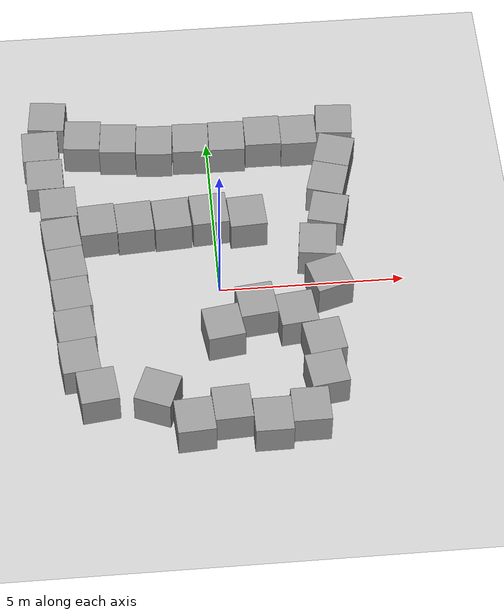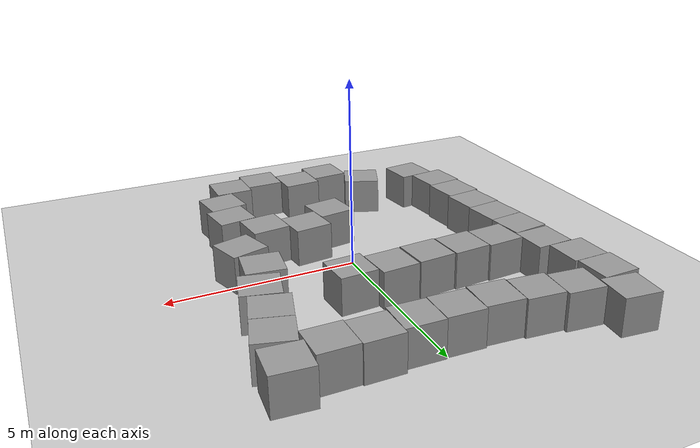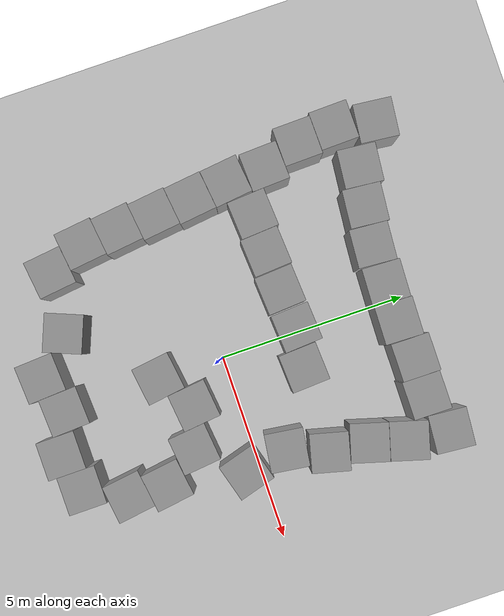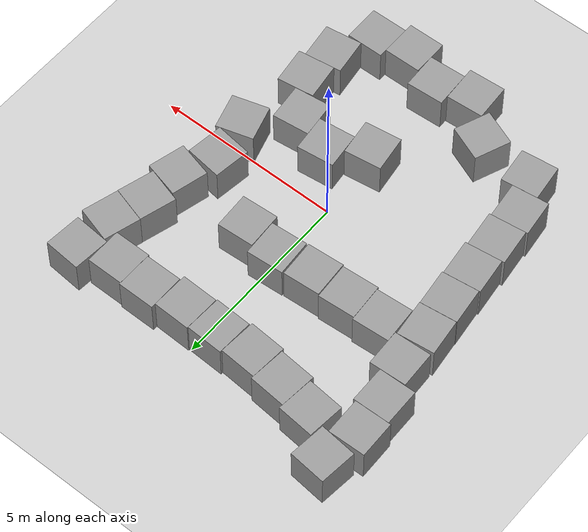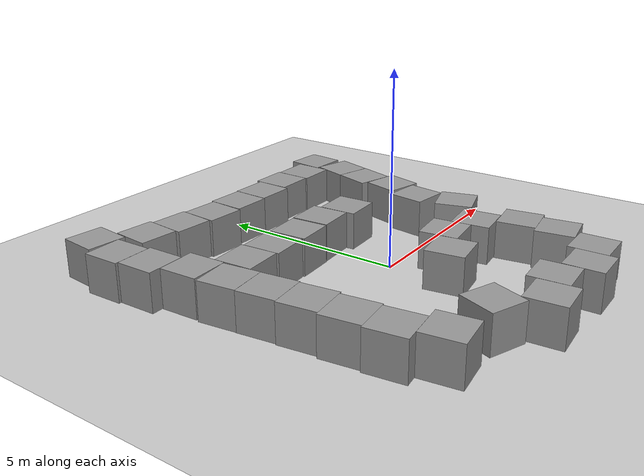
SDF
<sdf version="1.7">
 <world name="default">
  <light name="sun" type="directional">
   <pose>0 0 10 0 -0 0</pose>
   <diffuse>0.8 0.8 0.8 1</diffuse>
   <specular>0.2 0.2 0.2 1</specular>
   <attenuation>
    <range>1000</range>
    <constant>0.9</constant>
    <linear>0.01</linear>
    <quadratic>0.001</quadratic>
   </attenuation>
   <direction>-0.5 0.1 -0.9</direction>
   <spot><inner_angle>0</inner_angle><outer_angle>0</outer_angle><falloff>0</falloff></spot>
  </light>
  <model name="ground_plane">
   <static>1</static>
   <link name="link">
    <collision name="collision">
     <geometry><plane><normal>0 0 1</normal><size>100 100</size></plane></geometry>
     <surface>
      <contact><collide_bitmask>65535</collide_bitmask></contact>
      <friction><ode><mu>100</mu><mu2>50</mu2></ode></friction>
     </surface>
    </collision>
    <visual name="visual">
     <cast_shadows>0</cast_shadows>
     <geometry><plane><normal>0 0 1</normal><size>100 100</size></plane></geometry>
     <material>
      <script><uri>file://media/materials/scripts/gazebo.material</uri><name>Gazebo/Grey</name></script>
     </material>
    </visual>
   </link>
  </model>
  <gravity>0 0 -9.8</gravity>
  <magnetic_field>6e-06 2.3e-05 -4.2e-05</magnetic_field>
  <atmosphere type="adiabatic"/>
  <physics type="ode">
   <max_step_size>0.001</max_step_size>
   <real_time_factor>1</real_time_factor>
   <real_time_update_rate>1000</real_time_update_rate>
  </physics>
  <scene><ambient>0.4 0.4 0.4 1</ambient><background>0.7 0.7 0.7 1</background><shadows>1</shadows></scene>
  <audio><device>default</device></audio>
  <spherical_coordinates>
   <surface_model>EARTH_WGS84</surface_model>
   <latitude_deg>0</latitude_deg>
   <longitude_deg>0</longitude_deg>
   <elevation>0</elevation>
   <heading_deg>0</heading_deg>
  </spherical_coordinates>
  <model name="unit_box">
   <pose>-0.035627 -1.67872 0.499995 -0 -1e-05 0.138836</pose>
   <link name="link">
    <inertial>
     <mass>1</mass>
     <inertia>
      <ixx>0.166667</ixx>
      <ixy>0</ixy>
      <ixz>0</ixz>
      <iyy>0.166667</iyy>
      <iyz>0</iyz>
      <izz>0.166667</izz>
     </inertia>
    </inertial>
    <collision name="collision"><geometry><box><size>1 1 1</size></box></geometry></collision>
    <visual name="visual">
     <geometry><box><size>1 1 1</size></box></geometry>
     <material>
      <script><name>Gazebo/Grey</name><uri>file://media/materials/scripts/gazebo.material</uri></script>
     </material>
    </visual>
   </link>
  </model>
  <model name="unit_box_0">
   <pose>0.898488 -1.04184 0.5 0 -0 0.111976</pose>
   <link name="link">
    <inertial>
     <mass>1</mass>
     <inertia>
      <ixx>0.166667</ixx>
      <ixy>0</ixy>
      <ixz>0</ixz>
      <iyy>0.166667</iyy>
      <iyz>0</iyz>
      <izz>0.166667</izz>
     </inertia>
    </inertial>
    <collision name="collision"><geometry><box><size>1 1 1</size></box></geometry></collision>
    <visual name="visual">
     <geometry><box><size>1 1 1</size></box></geometry>
     <material>
      <script><name>Gazebo/Grey</name><uri>file://media/materials/scripts/gazebo.material</uri></script>
     </material>
    </visual>
   </link>
  </model>
  <model name="unit_box_2">
   <pose>-2.19354 1.93386 0.5 0 -0 0.065932</pose>
   <link name="link">
    <inertial>
     <mass>1</mass>
     <inertia>
      <ixx>0.166667</ixx>
      <ixy>0</ixy>
      <ixz>0</ixz>
      <iyy>0.166667</iyy>
      <iyz>0</iyz>
      <izz>0.166667</izz>
     </inertia>
    </inertial>
    <collision name="collision"><geometry><box><size>1 1 1</size></box></geometry></collision>
    <visual name="visual">
     <geometry><box><size>1 1 1</size></box></geometry>
     <material>
      <script><name>Gazebo/Grey</name><uri>file://media/materials/scripts/gazebo.material</uri></script>
     </material>
    </visual>
   </link>
  </model>
  <light name="user_point_light_0" type="point">
   <pose>-0.100506 -0.034414 1 0 -0 0</pose>
   <diffuse>0.5 0.5 0.5 1</diffuse>
   <specular>0.1 0.1 0.1 1</specular>
   <attenuation>
    <range>20</range>
    <constant>0.5</constant>
    <linear>0.01</linear>
    <quadratic>0.001</quadratic>
   </attenuation>
   <cast_shadows>0</cast_shadows>
   <direction>0 0 -1</direction>
   <spot><inner_angle>0</inner_angle><outer_angle>0</outer_angle><falloff>0</falloff></spot>
  </light>
  <model name="unit_box_4">
   <pose>-1.89105 -3.5814 0.499995 1e-05 0 -0.380639</pose>
   <link name="link">
    <inertial>
     <mass>1</mass>
     <inertia>
      <ixx>0.166667</ixx>
      <ixy>0</ixy>
      <ixz>0</ixz>
      <iyy>0.166667</iyy>
      <iyz>0</iyz>
      <izz>0.166667</izz>
     </inertia>
    </inertial>
    <collision name="collision"><geometry><box><size>1 1 1</size></box></geometry></collision>
    <visual name="visual">
     <geometry><box><size>1 1 1</size></box></geometry>
     <material>
      <script><name>Gazebo/Grey</name><uri>file://media/materials/scripts/gazebo.material</uri></script>
     </material>
    </visual>
   </link>
  </model>
  <model name="unit_box_5">
   <pose>-0.998855 -4.49218 0.5 0 -0 0.060899</pose>
   <link name="link">
    <inertial>
     <mass>1</mass>
     <inertia>
      <ixx>0.166667</ixx>
      <ixy>0</ixy>
      <ixz>0</ixz>
      <iyy>0.166667</iyy>
      <iyz>0</iyz>
      <izz>0.166667</izz>
     </inertia>
    </inertial>
    <collision name="collision"><geometry><box><size>1 1 1</size></box></geometry></collision>
    <visual name="visual">
     <geometry><box><size>1 1 1</size></box></geometry>
     <material>
      <script><name>Gazebo/Grey</name><uri>file://media/materials/scripts/gazebo.material</uri></script>
     </material>
    </visual>
   </link>
  </model>
  <model name="unit_box_6">
   <pose>-0.01034 -4.19096 0.499995 0 -1e-05 0.05102</pose>
   <link name="link">
    <inertial>
     <mass>1</mass>
     <inertia>
      <ixx>0.166667</ixx>
      <ixy>0</ixy>
      <ixz>0</ixz>
      <iyy>0.166667</iyy>
      <iyz>0</iyz>
      <izz>0.166667</izz>
     </inertia>
    </inertial>
    <collision name="collision"><geometry><box><size>1 1 1</size></box></geometry></collision>
    <visual name="visual">
     <geometry><box><size>1 1 1</size></box></geometry>
     <material>
      <script><name>Gazebo/Grey</name><uri>file://media/materials/scripts/gazebo.material</uri></script>
     </material>
    </visual>
   </link>
  </model>
  <model name="unit_box_7">
   <pose>1.01431 -4.62885 0.499995 1e-05 0 0.007071</pose>
   <link name="link">
    <inertial>
     <mass>1</mass>
     <inertia>
      <ixx>0.166667</ixx>
      <ixy>0</ixy>
      <ixz>0</ixz>
      <iyy>0.166667</iyy>
      <iyz>0</iyz>
      <izz>0.166667</izz>
     </inertia>
    </inertial>
    <collision name="collision"><geometry><box><size>1 1 1</size></box></geometry></collision>
    <visual name="visual">
     <geometry><box><size>1 1 1</size></box></geometry>
     <material>
      <script><name>Gazebo/Grey</name><uri>file://media/materials/scripts/gazebo.material</uri></script>
     </material>
    </visual>
   </link>
  </model>
  <model name="unit_box_8">
   <pose>2.01285 -4.40975 0.499995 1e-05 -0 0.006996</pose>
   <link name="link">
    <inertial>
     <mass>1</mass>
     <inertia>
      <ixx>0.166667</ixx>
      <ixy>0</ixy>
      <ixz>0</ixz>
      <iyy>0.166667</iyy>
      <iyz>0</iyz>
      <izz>0.166667</izz>
     </inertia>
    </inertial>
    <collision name="collision"><geometry><box><size>1 1 1</size></box></geometry></collision>
    <visual name="visual">
     <geometry><box><size>1 1 1</size></box></geometry>
     <material>
      <script><name>Gazebo/Grey</name><uri>file://media/materials/scripts/gazebo.material</uri></script>
     </material>
    </visual>
   </link>
  </model>
  <model name="unit_box_9">
   <pose>2.54337 -3.34328 0.5 0 -0 0.138745</pose>
   <link name="link">
    <inertial>
     <mass>1</mass>
     <inertia>
      <ixx>0.166667</ixx>
      <ixy>0</ixy>
      <ixz>0</ixz>
      <iyy>0.166667</iyy>
      <iyz>0</iyz>
      <izz>0.166667</izz>
     </inertia>
    </inertial>
    <collision name="collision"><geometry><box><size>1 1 1</size></box></geometry></collision>
    <visual name="visual">
     <geometry><box><size>1 1 1</size></box></geometry>
     <material>
      <script><name>Gazebo/Grey</name><uri>file://media/materials/scripts/gazebo.material</uri></script>
     </material>
    </visual>
   </link>
  </model>
  <model name="unit_box_10">
   <pose>2.58263 -2.32772 0.5 0 -0 0.139362</pose>
   <link name="link">
    <inertial>
     <mass>1</mass>
     <inertia>
      <ixx>0.166667</ixx>
      <ixy>0</ixy>
      <ixz>0</ixz>
      <iyy>0.166667</iyy>
      <iyz>0</iyz>
      <izz>0.166667</izz>
     </inertia>
    </inertial>
    <collision name="collision"><geometry><box><size>1 1 1</size></box></geometry></collision>
    <visual name="visual">
     <geometry><box><size>1 1 1</size></box></geometry>
     <material>
      <script><name>Gazebo/Grey</name><uri>file://media/materials/scripts/gazebo.material</uri></script>
     </material>
    </visual>
   </link>
  </model>
  <model name="unit_box_11">
   <pose>1.94389 -1.38844 0.5 0 -0 0.108842</pose>
   <link name="link">
    <inertial>
     <mass>1</mass>
     <inertia>
      <ixx>0.166667</ixx>
      <ixy>0</ixy>
      <ixz>0</ixz>
      <iyy>0.166667</iyy>
      <iyz>0</iyz>
      <izz>0.166667</izz>
     </inertia>
    </inertial>
    <collision name="collision"><geometry><box><size>1 1 1</size></box></geometry></collision>
    <visual name="visual">
     <geometry><box><size>1 1 1</size></box></geometry>
     <material>
      <script><name>Gazebo/Grey</name><uri>file://media/materials/scripts/gazebo.material</uri></script>
     </material>
    </visual>
   </link>
  </model>
  <model name="unit_box_12">
   <pose>-3.45034 -3.39839 0.5 0 -0 0.120174</pose>
   <link name="link">
    <inertial>
     <mass>1</mass>
     <inertia>
      <ixx>0.166667</ixx>
      <ixy>0</ixy>
      <ixz>0</ixz>
      <iyy>0.166667</iyy>
      <iyz>0</iyz>
      <izz>0.166667</izz>
     </inertia>
    </inertial>
    <collision name="collision"><geometry><box><size>1 1 1</size></box></geometry></collision>
    <visual name="visual">
     <geometry><box><size>1 1 1</size></box></geometry>
     <material>
      <script><name>Gazebo/Grey</name><uri>file://media/materials/scripts/gazebo.material</uri></script>
     </material>
    </visual>
   </link>
  </model>
  <model name="unit_box_14">
   <pose>-3.95054 -1.44313 0.5 0 -0 0.119674</pose>
   <link name="link">
    <inertial>
     <mass>1</mass>
     <inertia>
      <ixx>0.166667</ixx>
      <ixy>0</ixy>
      <ixz>0</ixz>
      <iyy>0.166667</iyy>
      <iyz>0</iyz>
      <izz>0.166667</izz>
     </inertia>
    </inertial>
    <collision name="collision"><geometry><box><size>1 1 1</size></box></geometry></collision>
    <visual name="visual">
     <geometry><box><size>1 1 1</size></box></geometry>
     <material>
      <script><name>Gazebo/Grey</name><uri>file://media/materials/scripts/gazebo.material</uri></script>
     </material>
    </visual>
   </link>
  </model>
  <model name="unit_box_15">
   <pose>-4.00321 -0.442221 0.499995 -0 1e-05 0.11961</pose>
   <link name="link">
    <inertial>
     <mass>1</mass>
     <inertia>
      <ixx>0.166667</ixx>
      <ixy>0</ixy>
      <ixz>0</ixz>
      <iyy>0.166667</iyy>
      <iyz>0</iyz>
      <izz>0.166667</izz>
     </inertia>
    </inertial>
    <collision name="collision"><geometry><box><size>1 1 1</size></box></geometry></collision>
    <visual name="visual">
     <geometry><box><size>1 1 1</size></box></geometry>
     <material>
      <script><name>Gazebo/Grey</name><uri>file://media/materials/scripts/gazebo.material</uri></script>
     </material>
    </visual>
   </link>
  </model>
  <model name="unit_box_16">
   <pose>-4.09014 0.55515 0.499995 0 -1e-05 0.118776</pose>
   <link name="link">
    <inertial>
     <mass>1</mass>
     <inertia>
      <ixx>0.166667</ixx>
      <ixy>0</ixy>
      <ixz>0</ixz>
      <iyy>0.166667</iyy>
      <iyz>0</iyz>
      <izz>0.166667</izz>
     </inertia>
    </inertial>
    <collision name="collision"><geometry><box><size>1 1 1</size></box></geometry></collision>
    <visual name="visual">
     <geometry><box><size>1 1 1</size></box></geometry>
     <material>
      <script><name>Gazebo/Grey</name><uri>file://media/materials/scripts/gazebo.material</uri></script>
     </material>
    </visual>
   </link>
  </model>
  <model name="unit_box_13">
   <pose>-3.88289 -2.44225 0.5 0 -0 0.119731</pose>
   <link name="link">
    <inertial>
     <mass>1</mass>
     <inertia>
      <ixx>0.166667</ixx>
      <ixy>0</ixy>
      <ixz>0</ixz>
      <iyy>0.166667</iyy>
      <iyz>0</iyz>
      <izz>0.166667</izz>
     </inertia>
    </inertial>
    <collision name="collision"><geometry><box><size>1 1 1</size></box></geometry></collision>
    <visual name="visual">
     <geometry><box><size>1 1 1</size></box></geometry>
     <material>
      <script><name>Gazebo/Grey</name><uri>file://media/materials/scripts/gazebo.material</uri></script>
     </material>
    </visual>
   </link>
  </model>
  <model name="unit_box_17">
   <pose>-4.19787 1.55148 0.5 0 -0 0.115383</pose>
   <link name="link">
    <inertial>
     <mass>1</mass>
     <inertia>
      <ixx>0.166667</ixx>
      <ixy>0</ixy>
      <ixz>0</ixz>
      <iyy>0.166667</iyy>
      <iyz>0</iyz>
      <izz>0.166667</izz>
     </inertia>
    </inertial>
    <collision name="collision"><geometry><box><size>1 1 1</size></box></geometry></collision>
    <visual name="visual">
     <geometry><box><size>1 1 1</size></box></geometry>
     <material>
      <script><name>Gazebo/Grey</name><uri>file://media/materials/scripts/gazebo.material</uri></script>
     </material>
    </visual>
   </link>
  </model>
  <model name="unit_box_18">
   <pose>-4.24034 2.58548 0.499995 0 -1e-05 0.043618</pose>
   <link name="link">
    <inertial>
     <mass>1</mass>
     <inertia>
      <ixx>0.166667</ixx>
      <ixy>0</ixy>
      <ixz>0</ixz>
      <iyy>0.166667</iyy>
      <iyz>0</iyz>
      <izz>0.166667</izz>
     </inertia>
    </inertial>
    <collision name="collision"><geometry><box><size>1 1 1</size></box></geometry></collision>
    <visual name="visual">
     <geometry><box><size>1 1 1</size></box></geometry>
     <material>
      <script><name>Gazebo/Grey</name><uri>file://media/materials/scripts/gazebo.material</uri></script>
     </material>
    </visual>
   </link>
  </model>
  <model name="unit_box_19">
   <pose>-3.19948 1.92539 0.5 0 -0 0.066023</pose>
   <link name="link">
    <inertial>
     <mass>1</mass>
     <inertia>
      <ixx>0.166667</ixx>
      <ixy>0</ixy>
      <ixz>0</ixz>
      <iyy>0.166667</iyy>
      <iyz>0</iyz>
      <izz>0.166667</izz>
     </inertia>
    </inertial>
    <collision name="collision"><geometry><box><size>1 1 1</size></box></geometry></collision>
    <visual name="visual">
     <geometry><box><size>1 1 1</size></box></geometry>
     <material>
      <script><name>Gazebo/Grey</name><uri>file://media/materials/scripts/gazebo.material</uri></script>
     </material>
    </visual>
   </link>
  </model>
  <model name="unit_box_20">
   <pose>-1.17132 1.96383 0.5 0 -0 0.065593</pose>
   <link name="link">
    <inertial>
     <mass>1</mass>
     <inertia>
      <ixx>0.166667</ixx>
      <ixy>0</ixy>
      <ixz>0</ixz>
      <iyy>0.166667</iyy>
      <iyz>0</iyz>
      <izz>0.166667</izz>
     </inertia>
    </inertial>
    <collision name="collision"><geometry><box><size>1 1 1</size></box></geometry></collision>
    <visual name="visual">
     <geometry><box><size>1 1 1</size></box></geometry>
     <material>
      <script><name>Gazebo/Grey</name><uri>file://media/materials/scripts/gazebo.material</uri></script>
     </material>
    </visual>
   </link>
  </model>
  <model name="unit_box_21">
   <pose>-0.134526 2.04707 0.5 0 -0 0.065597</pose>
   <link name="link">
    <inertial>
     <mass>1</mass>
     <inertia>
      <ixx>0.166667</ixx>
      <ixy>0</ixy>
      <ixz>0</ixz>
      <iyy>0.166667</iyy>
      <iyz>0</iyz>
      <izz>0.166667</izz>
     </inertia>
    </inertial>
    <collision name="collision"><geometry><box><size>1 1 1</size></box></geometry></collision>
    <visual name="visual">
     <geometry><box><size>1 1 1</size></box></geometry>
     <material>
      <script><name>Gazebo/Grey</name><uri>file://media/materials/scripts/gazebo.material</uri></script>
     </material>
    </visual>
   </link>
  </model>
  <model name="unit_box_22">
   <pose>0.888357 1.90071 0.499995 -1e-05 0 0.054946</pose>
   <link name="link">
    <inertial>
     <mass>1</mass>
     <inertia>
      <ixx>0.166667</ixx>
      <ixy>0</ixy>
      <ixz>0</ixz>
      <iyy>0.166667</iyy>
      <iyz>0</iyz>
      <izz>0.166667</izz>
     </inertia>
    </inertial>
    <collision name="collision"><geometry><box><size>1 1 1</size></box></geometry></collision>
    <visual name="visual">
     <geometry><box><size>1 1 1</size></box></geometry>
     <material>
      <script><name>Gazebo/Grey</name><uri>file://media/materials/scripts/gazebo.material</uri></script>
     </material>
    </visual>
   </link>
  </model>
  <model name="unit_box_24">
   <pose>2.9275 -0.331741 0.499996 -1.58153 1.57079 -2.87122</pose>
   <link name="link">
    <inertial>
     <mass>1</mass>
     <inertia>
      <ixx>0.166667</ixx>
      <ixy>0</ixy>
      <ixz>0</ixz>
      <iyy>0.166667</iyy>
      <iyz>0</iyz>
      <izz>0.166667</izz>
     </inertia>
    </inertial>
    <collision name="collision"><geometry><box><size>1 1 1</size></box></geometry></collision>
    <visual name="visual">
     <geometry><box><size>1 1 1</size></box></geometry>
     <material>
      <script><name>Gazebo/Grey</name><uri>file://media/materials/scripts/gazebo.material</uri></script>
     </material>
    </visual>
   </link>
  </model>
  <model name="unit_box_22_clone">
   <pose>0.538763 4.54633 0.499995 0 1e-05 -0.026466</pose>
   <link name="link">
    <inertial>
     <mass>1</mass>
     <inertia>
      <ixx>0.166667</ixx>
      <ixy>0</ixy>
      <ixz>0</ixz>
      <iyy>0.166667</iyy>
      <iyz>0</iyz>
      <izz>0.166667</izz>
     </inertia>
    </inertial>
    <collision name="collision"><geometry><box><size>1 1 1</size></box></geometry></collision>
    <visual name="visual">
     <geometry><box><size>1 1 1</size></box></geometry>
     <material>
      <script><name>Gazebo/Grey</name><uri>file://media/materials/scripts/gazebo.material</uri></script>
     </material>
    </visual>
   </link>
  </model>
  <model name="unit_box_22_clone_0">
   <pose>-0.469286 4.54956 0.499995 0 1e-05 -0.03933</pose>
   <link name="link">
    <inertial>
     <mass>1</mass>
     <inertia>
      <ixx>0.166667</ixx>
      <ixy>0</ixy>
      <ixz>0</ixz>
      <iyy>0.166667</iyy>
      <iyz>0</iyz>
      <izz>0.166667</izz>
     </inertia>
    </inertial>
    <collision name="collision"><geometry><box><size>1 1 1</size></box></geometry></collision>
    <visual name="visual">
     <geometry><box><size>1 1 1</size></box></geometry>
     <material>
      <script><name>Gazebo/Grey</name><uri>file://media/materials/scripts/gazebo.material</uri></script>
     </material>
    </visual>
   </link>
  </model>
  <model name="unit_box_22_clone_1">
   <pose>-1.48681 4.54544 0.5 -0 -0 -0.070127</pose>
   <link name="link">
    <inertial>
     <mass>1</mass>
     <inertia>
      <ixx>0.166667</ixx>
      <ixy>0</ixy>
      <ixz>0</ixz>
      <iyy>0.166667</iyy>
      <iyz>0</iyz>
      <izz>0.166667</izz>
     </inertia>
    </inertial>
    <collision name="collision"><geometry><box><size>1 1 1</size></box></geometry></collision>
    <visual name="visual">
     <geometry><box><size>1 1 1</size></box></geometry>
     <material>
      <script><name>Gazebo/Grey</name><uri>file://media/materials/scripts/gazebo.material</uri></script>
     </material>
    </visual>
   </link>
  </model>
  <model name="unit_box_22_clone_2">
   <pose>-2.48674 4.68927 0.499995 0 1e-05 -0.087593</pose>
   <link name="link">
    <inertial>
     <mass>1</mass>
     <inertia>
      <ixx>0.166667</ixx>
      <ixy>0</ixy>
      <ixz>0</ixz>
      <iyy>0.166667</iyy>
      <iyz>0</iyz>
      <izz>0.166667</izz>
     </inertia>
    </inertial>
    <collision name="collision"><geometry><box><size>1 1 1</size></box></geometry></collision>
    <visual name="visual">
     <geometry><box><size>1 1 1</size></box></geometry>
     <material>
      <script><name>Gazebo/Grey</name><uri>file://media/materials/scripts/gazebo.material</uri></script>
     </material>
    </visual>
   </link>
  </model>
  <model name="unit_box_22_clone_3">
   <pose>-3.47667 4.88533 0.499995 -1e-05 -0 -0.095389</pose>
   <link name="link">
    <inertial>
     <mass>1</mass>
     <inertia>
      <ixx>0.166667</ixx>
      <ixy>0</ixy>
      <ixz>0</ixz>
      <iyy>0.166667</iyy>
      <iyz>0</iyz>
      <izz>0.166667</izz>
     </inertia>
    </inertial>
    <collision name="collision"><geometry><box><size>1 1 1</size></box></geometry></collision>
    <visual name="visual">
     <geometry><box><size>1 1 1</size></box></geometry>
     <material>
      <script><name>Gazebo/Grey</name><uri>file://media/materials/scripts/gazebo.material</uri></script>
     </material>
    </visual>
   </link>
  </model>
  <model name="unit_box_22_clone_4">
   <pose>-4.43264 5.62821 0.5 -0 -0 -0.104545</pose>
   <link name="link">
    <inertial>
     <mass>1</mass>
     <inertia>
      <ixx>0.166667</ixx>
      <ixy>0</ixy>
      <ixz>0</ixz>
      <iyy>0.166667</iyy>
      <iyz>0</iyz>
      <izz>0.166667</izz>
     </inertia>
    </inertial>
    <collision name="collision"><geometry><box><size>1 1 1</size></box></geometry></collision>
    <visual name="visual">
     <geometry><box><size>1 1 1</size></box></geometry>
     <material>
      <script><name>Gazebo/Grey</name><uri>file://media/materials/scripts/gazebo.material</uri></script>
     </material>
    </visual>
   </link>
  </model>
  <model name="unit_box_22_clone_5">
   <pose>-4.57038 3.58411 0.499995 0 1e-05 0.021589</pose>
   <link name="link">
    <inertial>
     <mass>1</mass>
     <inertia>
      <ixx>0.166667</ixx>
      <ixy>0</ixy>
      <ixz>0</ixz>
      <iyy>0.166667</iyy>
      <iyz>0</iyz>
      <izz>0.166667</izz>
     </inertia>
    </inertial>
    <collision name="collision"><geometry><box><size>1 1 1</size></box></geometry></collision>
    <visual name="visual">
     <geometry><box><size>1 1 1</size></box></geometry>
     <material>
      <script><name>Gazebo/Grey</name><uri>file://media/materials/scripts/gazebo.material</uri></script>
     </material>
    </visual>
   </link>
  </model>
  <model name="unit_box_22_clone_6">
   <pose>-4.65996 4.58477 0.499995 0 1e-05 0.023232</pose>
   <link name="link">
    <inertial>
     <mass>1</mass>
     <inertia>
      <ixx>0.166667</ixx>
      <ixy>0</ixy>
      <ixz>0</ixz>
      <iyy>0.166667</iyy>
      <iyz>0</iyz>
      <izz>0.166667</izz>
     </inertia>
    </inertial>
    <collision name="collision"><geometry><box><size>1 1 1</size></box></geometry></collision>
    <visual name="visual">
     <geometry><box><size>1 1 1</size></box></geometry>
     <material>
      <script><name>Gazebo/Grey</name><uri>file://media/materials/scripts/gazebo.material</uri></script>
     </material>
    </visual>
   </link>
  </model>
  <model name="unit_box_22_clone_7">
   <pose>2.72458 0.815674 0.499995 -1e-05 0 -0.131393</pose>
   <link name="link">
    <inertial>
     <mass>1</mass>
     <inertia>
      <ixx>0.166667</ixx>
      <ixy>0</ixy>
      <ixz>0</ixz>
      <iyy>0.166667</iyy>
      <iyz>0</iyz>
      <izz>0.166667</izz>
     </inertia>
    </inertial>
    <collision name="collision"><geometry><box><size>1 1 1</size></box></geometry></collision>
    <visual name="visual">
     <geometry><box><size>1 1 1</size></box></geometry>
     <material>
      <script><name>Gazebo/Grey</name><uri>file://media/materials/scripts/gazebo.material</uri></script>
     </material>
    </visual>
   </link>
  </model>
  <model name="unit_box_22_clone_9">
   <pose>3.12336 1.82987 0.499995 0 1e-05 -0.250637</pose>
   <link name="link">
    <inertial>
     <mass>1</mass>
     <inertia>
      <ixx>0.166667</ixx>
      <ixy>0</ixy>
      <ixz>0</ixz>
      <iyy>0.166667</iyy>
      <iyz>0</iyz>
      <izz>0.166667</izz>
     </inertia>
    </inertial>
    <collision name="collision"><geometry><box><size>1 1 1</size></box></geometry></collision>
    <visual name="visual">
     <geometry><box><size>1 1 1</size></box></geometry>
     <material>
      <script><name>Gazebo/Grey</name><uri>file://media/materials/scripts/gazebo.material</uri></script>
     </material>
    </visual>
   </link>
  </model>
  <model name="unit_box_22_clone_10">
   <pose>3.21566 2.85866 0.5 0 -0 -0.282124</pose>
   <link name="link">
    <inertial>
     <mass>1</mass>
     <inertia>
      <ixx>0.166667</ixx>
      <ixy>0</ixy>
      <ixz>0</ixz>
      <iyy>0.166667</iyy>
      <iyz>0</iyz>
      <izz>0.166667</izz>
     </inertia>
    </inertial>
    <collision name="collision"><geometry><box><size>1 1 1</size></box></geometry></collision>
    <visual name="visual">
     <geometry><box><size>1 1 1</size></box></geometry>
     <material>
      <script><name>Gazebo/Grey</name><uri>file://media/materials/scripts/gazebo.material</uri></script>
     </material>
    </visual>
   </link>
  </model>
  <model name="unit_box_22_clone_11">
   <pose>3.48907 3.82346 0.5 0 -0 -0.281567</pose>
   <link name="link">
    <inertial>
     <mass>1</mass>
     <inertia>
      <ixx>0.166667</ixx>
      <ixy>0</ixy>
      <ixz>0</ixz>
      <iyy>0.166667</iyy>
      <iyz>0</iyz>
      <izz>0.166667</izz>
     </inertia>
    </inertial>
    <collision name="collision"><geometry><box><size>1 1 1</size></box></geometry></collision>
    <visual name="visual">
     <geometry><box><size>1 1 1</size></box></geometry>
     <material>
      <script><name>Gazebo/Grey</name><uri>file://media/materials/scripts/gazebo.material</uri></script>
     </material>
    </visual>
   </link>
  </model>
  <model name="unit_box_22_clone_12">
   <pose>3.59102 4.9092 0.499995 -1e-05 -0 -0.080489</pose>
   <link name="link">
    <inertial>
     <mass>1</mass>
     <inertia>
      <ixx>0.166667</ixx>
      <ixy>0</ixy>
      <ixz>0</ixz>
      <iyy>0.166667</iyy>
      <iyz>0</iyz>
      <izz>0.166667</izz>
     </inertia>
    </inertial>
    <collision name="collision"><geometry><box><size>1 1 1</size></box></geometry></collision>
    <visual name="visual">
     <geometry><box><size>1 1 1</size></box></geometry>
     <material>
      <script><name>Gazebo/Grey</name><uri>file://media/materials/scripts/gazebo.material</uri></script>
     </material>
    </visual>
   </link>
  </model>
  <model name="unit_box_22_clone_13">
   <pose>2.5519 4.60769 0.499995 0 -1e-05 -0.00316</pose>
   <link name="link">
    <inertial>
     <mass>1</mass>
     <inertia>
      <ixx>0.166667</ixx>
      <ixy>0</ixy>
      <ixz>0</ixz>
      <iyy>0.166667</iyy>
      <iyz>0</iyz>
      <izz>0.166667</izz>
     </inertia>
    </inertial>
    <collision name="collision"><geometry><box><size>1 1 1</size></box></geometry></collision>
    <visual name="visual">
     <geometry><box><size>1 1 1</size></box></geometry>
     <material>
      <script><name>Gazebo/Grey</name><uri>file://media/materials/scripts/gazebo.material</uri></script>
     </material>
    </visual>
   </link>
  </model>
  <model name="unit_box_22_clone_14">
   <pose>1.55109 4.65116 0.499995 0 -1e-05 -0.003786</pose>
   <link name="link">
    <inertial>
     <mass>1</mass>
     <inertia>
      <ixx>0.166667</ixx>
      <ixy>0</ixy>
      <ixz>0</ixz>
      <iyy>0.166667</iyy>
      <iyz>0</iyz>
      <izz>0.166667</izz>
     </inertia>
    </inertial>
    <collision name="collision"><geometry><box><size>1 1 1</size></box></geometry></collision>
    <visual name="visual">
     <geometry><box><size>1 1 1</size></box></geometry>
     <material>
      <script><name>Gazebo/Grey</name><uri>file://media/materials/scripts/gazebo.material</uri></script>
     </material>
    </visual>
   </link>
  </model>
 </world>
</sdf>
